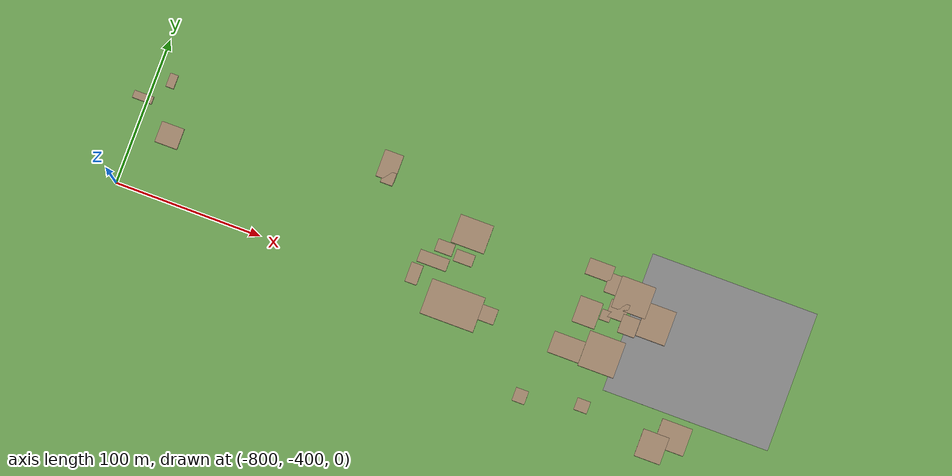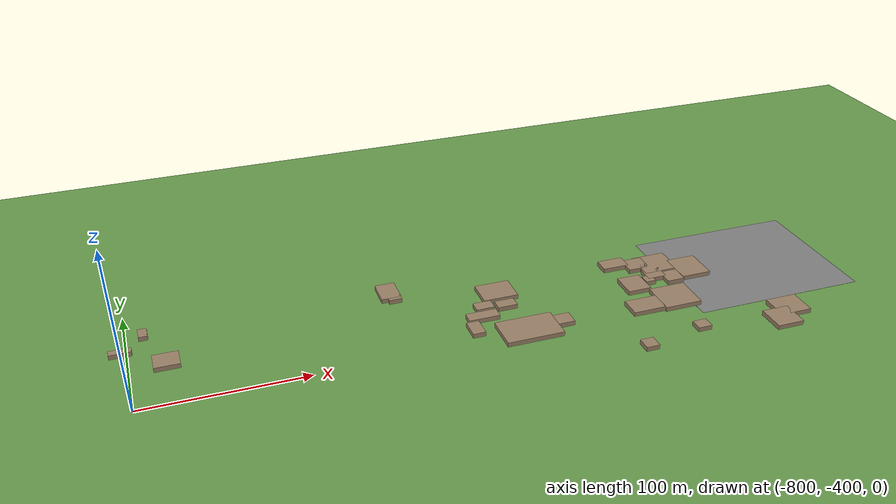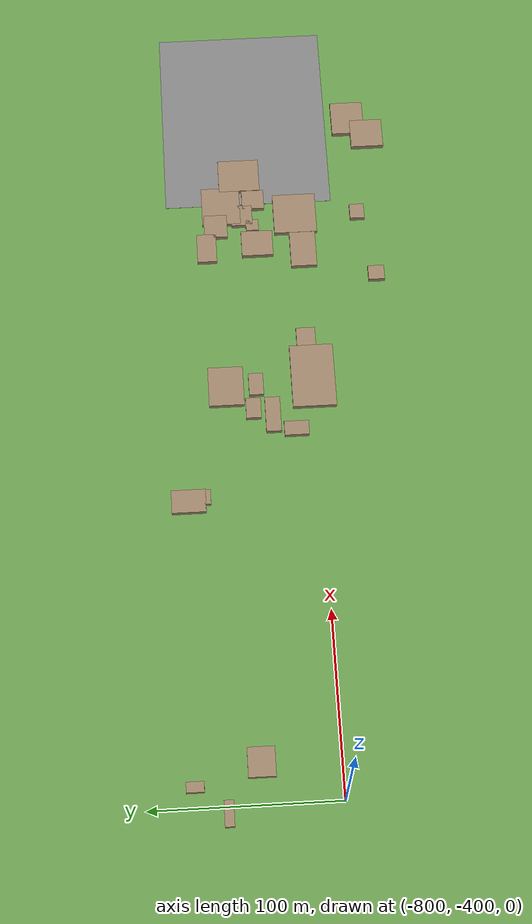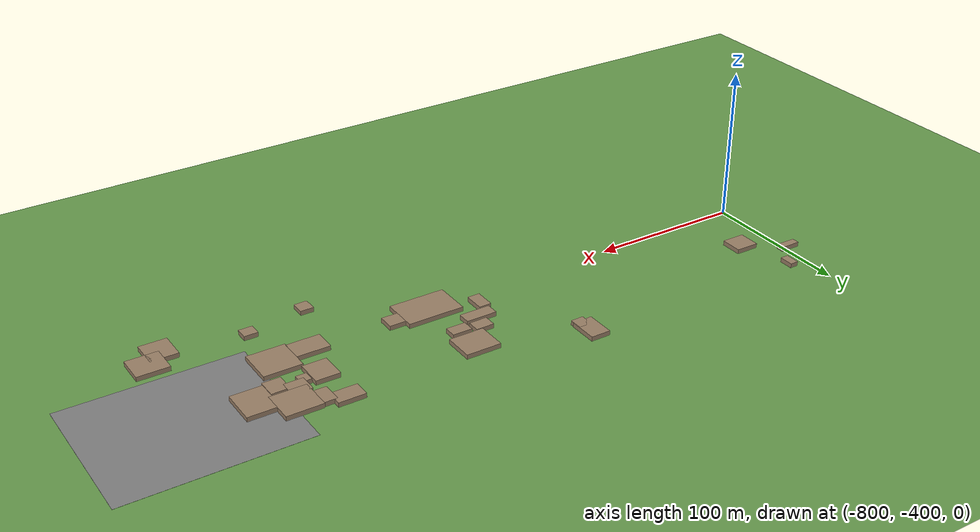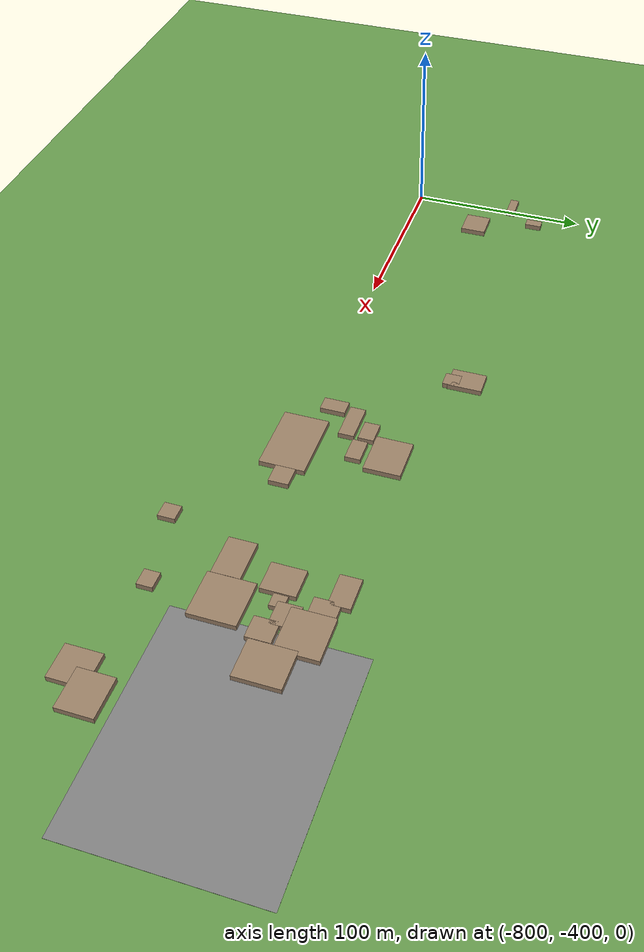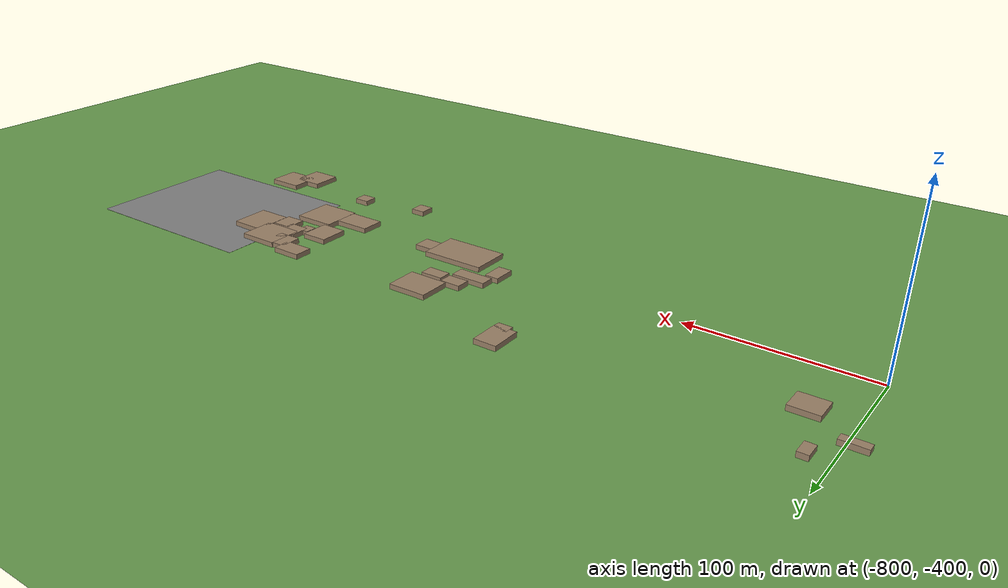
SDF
<sdf version="1.9">
 <world name="kimje_farmland">
  <model name="ground_plane">
   <static>true</static>
   <link name="link">
    <collision name="collision">
     <geometry><plane><normal>0 0 1</normal><size>2000 2000</size></plane></geometry>
    </collision>
    <visual name="visual">
     <geometry><plane><normal>0 0 1</normal><size>2000 2000</size></plane></geometry>
     <material><ambient>0.4 0.6 0.3 1</ambient><diffuse>0.4 0.6 0.3 1</diffuse></material>
    </visual>
   </link>
  </model>
  <model name="osm_3">
   <static>true</static>
   <pose>-398.99 -369.41 0.040 0 0 0</pose>
   <link name="link">
    <collision name="collision"><geometry><box><size>113.94 94.78 0.080</size></box></geometry></collision>
    <visual name="visual">
     <geometry><box><size>113.94 94.78 0.080</size></box></geometry>
     <material><ambient>0.5 0.5 0.5 1</ambient><diffuse>0.5 0.5 0.5 1</diffuse></material>
    </visual>
   </link>
  </model>
  <model name="osm_670">
   <static>true</static>
   <pose>-789.35 -324.95 1.500 0 0 0</pose>
   <link name="link">
    <collision name="collision"><geometry><box><size>5.48 9.30 3.000</size></box></geometry></collision>
    <visual name="visual">
     <geometry><box><size>5.48 9.30 3.000</size></box></geometry>
     <material><ambient>0.6 0.5 0.4 1</ambient><diffuse>0.6 0.5 0.4 1</diffuse></material>
    </visual>
   </link>
  </model>
  <model name="osm_671">
   <static>true</static>
   <pose>-803.39 -341.46 1.500 0 0 0</pose>
   <link name="link">
    <collision name="collision"><geometry><box><size>13.41 4.99 3.000</size></box></geometry></collision>
    <visual name="visual">
     <geometry><box><size>13.41 4.99 3.000</size></box></geometry>
     <material><ambient>0.6 0.5 0.4 1</ambient><diffuse>0.6 0.5 0.4 1</diffuse></material>
    </visual>
   </link>
  </model>
  <model name="osm_692">
   <static>true</static>
   <pose>-484.50 -344.31 1.500 0 0 0</pose>
   <link name="link">
    <collision name="collision"><geometry><box><size>17.40 10.92 3.000</size></box></geometry></collision>
    <visual name="visual">
     <geometry><box><size>17.40 10.92 3.000</size></box></geometry>
     <material><ambient>0.6 0.5 0.4 1</ambient><diffuse>0.6 0.5 0.4 1</diffuse></material>
    </visual>
   </link>
  </model>
  <model name="osm_696">
   <static>true</static>
   <pose>-438.33 -364.62 1.500 0 0 0</pose>
   <link name="link">
    <collision name="collision"><geometry><box><size>20.10 23.24 3.000</size></box></geometry></collision>
    <visual name="visual">
     <geometry><box><size>20.10 23.24 3.000</size></box></geometry>
     <material><ambient>0.6 0.5 0.4 1</ambient><diffuse>0.6 0.5 0.4 1</diffuse></material>
    </visual>
   </link>
  </model>
  <model name="osm_697">
   <static>true</static>
   <pose>-457.89 -353.45 1.500 0 0 0</pose>
   <link name="link">
    <collision name="collision"><geometry><box><size>23.37 21.67 3.000</size></box></geometry></collision>
    <visual name="visual">
     <geometry><box><size>23.37 21.67 3.000</size></box></geometry>
     <material><ambient>0.6 0.5 0.4 1</ambient><diffuse>0.6 0.5 0.4 1</diffuse></material>
    </visual>
   </link>
  </model>
  <model name="osm_698">
   <static>true</static>
   <pose>-470.71 -349.93 1.500 0 0 0</pose>
   <link name="link">
    <collision name="collision"><geometry><box><size>14.04 13.18 3.000</size></box></geometry></collision>
    <visual name="visual">
     <geometry><box><size>14.04 13.18 3.000</size></box></geometry>
     <material><ambient>0.6 0.5 0.4 1</ambient><diffuse>0.6 0.5 0.4 1</diffuse></material>
    </visual>
   </link>
  </model>
  <model name="osm_699">
   <static>true</static>
   <pose>-464.51 -365.08 1.500 0 0 0</pose>
   <link name="link">
    <collision name="collision"><geometry><box><size>12.53 11.92 3.000</size></box></geometry></collision>
    <visual name="visual">
     <geometry><box><size>12.53 11.92 3.000</size></box></geometry>
     <material><ambient>0.6 0.5 0.4 1</ambient><diffuse>0.6 0.5 0.4 1</diffuse></material>
    </visual>
   </link>
  </model>
  <model name="osm_700">
   <static>true</static>
   <pose>-454.44 -371.98 1.500 0 0 0</pose>
   <link name="link">
    <collision name="collision"><geometry><box><size>11.72 12.49 3.000</size></box></geometry></collision>
    <visual name="visual">
     <geometry><box><size>11.72 12.49 3.000</size></box></geometry>
     <material><ambient>0.6 0.5 0.4 1</ambient><diffuse>0.6 0.5 0.4 1</diffuse></material>
    </visual>
   </link>
  </model>
  <model name="osm_701">
   <static>true</static>
   <pose>-464.63 -395.42 1.500 0 0 0</pose>
   <link name="link">
    <collision name="collision"><geometry><box><size>24.57 24.20 3.000</size></box></geometry></collision>
    <visual name="visual">
     <geometry><box><size>24.57 24.20 3.000</size></box></geometry>
     <material><ambient>0.6 0.5 0.4 1</ambient><diffuse>0.6 0.5 0.4 1</diffuse></material>
    </visual>
   </link>
  </model>
  <model name="osm_702">
   <static>true</static>
   <pose>-482.72 -372.98 1.500 0 0 0</pose>
   <link name="link">
    <collision name="collision"><geometry><box><size>15.58 17.70 3.000</size></box></geometry></collision>
    <visual name="visual">
     <geometry><box><size>15.58 17.70 3.000</size></box></geometry>
     <material><ambient>0.6 0.5 0.4 1</ambient><diffuse>0.6 0.5 0.4 1</diffuse></material>
    </visual>
   </link>
  </model>
  <model name="osm_703">
   <static>true</static>
   <pose>-470.85 -370.87 1.500 0 0 0</pose>
   <link name="link">
    <collision name="collision"><geometry><box><size>6.96 7.07 3.000</size></box></geometry></collision>
    <visual name="visual">
     <geometry><box><size>6.96 7.07 3.000</size></box></geometry>
     <material><ambient>0.6 0.5 0.4 1</ambient><diffuse>0.6 0.5 0.4 1</diffuse></material>
    </visual>
   </link>
  </model>
  <model name="osm_704">
   <static>true</static>
   <pose>-487.73 -398.90 1.500 0 0 0</pose>
   <link name="link">
    <collision name="collision"><geometry><box><size>21.55 14.53 3.000</size></box></geometry></collision>
    <visual name="visual">
     <geometry><box><size>21.55 14.53 3.000</size></box></geometry>
     <material><ambient>0.6 0.5 0.4 1</ambient><diffuse>0.6 0.5 0.4 1</diffuse></material>
    </visual>
   </link>
  </model>
  <model name="osm_705">
   <static>true</static>
   <pose>-570.69 -351.03 1.500 0 0 0</pose>
   <link name="link">
    <collision name="collision"><geometry><box><size>22.87 19.33 3.000</size></box></geometry></collision>
    <visual name="visual">
     <geometry><box><size>22.87 19.33 3.000</size></box></geometry>
     <material><ambient>0.6 0.5 0.4 1</ambient><diffuse>0.6 0.5 0.4 1</diffuse></material>
    </visual>
   </link>
  </model>
  <model name="osm_706">
   <static>true</static>
   <pose>-570.17 -367.59 1.500 0 0 0</pose>
   <link name="link">
    <collision name="collision"><geometry><box><size>12.84 7.99 3.000</size></box></geometry></collision>
    <visual name="visual">
     <geometry><box><size>12.84 7.99 3.000</size></box></geometry>
     <material><ambient>0.6 0.5 0.4 1</ambient><diffuse>0.6 0.5 0.4 1</diffuse></material>
    </visual>
   </link>
  </model>
  <model name="osm_707">
   <static>true</static>
   <pose>-584.35 -365.46 1.500 0 0 0</pose>
   <link name="link">
    <collision name="collision"><geometry><box><size>11.81 8.26 3.000</size></box></geometry></collision>
    <visual name="visual">
     <geometry><box><size>11.81 8.26 3.000</size></box></geometry>
     <material><ambient>0.6 0.5 0.4 1</ambient><diffuse>0.6 0.5 0.4 1</diffuse></material>
    </visual>
   </link>
  </model>
  <model name="osm_708">
   <static>true</static>
   <pose>-588.59 -375.96 1.500 0 0 0</pose>
   <link name="link">
    <collision name="collision"><geometry><box><size>20.17 8.26 3.000</size></box></geometry></collision>
    <visual name="visual">
     <geometry><box><size>20.17 8.26 3.000</size></box></geometry>
     <material><ambient>0.6 0.5 0.4 1</ambient><diffuse>0.6 0.5 0.4 1</diffuse></material>
    </visual>
   </link>
  </model>
  <model name="osm_709">
   <static>true</static>
   <pose>-597.33 -388.33 1.500 0 0 0</pose>
   <link name="link">
    <collision name="collision"><geometry><box><size>8.12 13.44 3.000</size></box></geometry></collision>
    <visual name="visual">
     <geometry><box><size>8.12 13.44 3.000</size></box></geometry>
     <material><ambient>0.6 0.5 0.4 1</ambient><diffuse>0.6 0.5 0.4 1</diffuse></material>
    </visual>
   </link>
  </model>
  <model name="osm_710">
   <static>true</static>
   <pose>-566.56 -399.19 1.500 0 0 0</pose>
   <link name="link">
    <collision name="collision"><geometry><box><size>36.81 23.98 3.000</size></box></geometry></collision>
    <visual name="visual">
     <geometry><box><size>36.81 23.98 3.000</size></box></geometry>
     <material><ambient>0.6 0.5 0.4 1</ambient><diffuse>0.6 0.5 0.4 1</diffuse></material>
    </visual>
   </link>
  </model>
  <model name="osm_711">
   <static>true</static>
   <pose>-542.86 -396.83 1.500 0 0 0</pose>
   <link name="link">
    <collision name="collision"><geometry><box><size>10.80 10.51 3.000</size></box></geometry></collision>
    <visual name="visual">
     <geometry><box><size>10.80 10.51 3.000</size></box></geometry>
     <material><ambient>0.6 0.5 0.4 1</ambient><diffuse>0.6 0.5 0.4 1</diffuse></material>
    </visual>
   </link>
  </model>
  <model name="osm_712">
   <static>true</static>
   <pose>-636.69 -327.88 1.500 0 0 0</pose>
   <link name="link">
    <collision name="collision"><geometry><box><size>12.87 18.46 3.000</size></box></geometry></collision>
    <visual name="visual">
     <geometry><box><size>12.87 18.46 3.000</size></box></geometry>
     <material><ambient>0.6 0.5 0.4 1</ambient><diffuse>0.6 0.5 0.4 1</diffuse></material>
    </visual>
   </link>
  </model>
  <model name="osm_713">
   <static>true</static>
   <pose>-634.74 -335.47 1.500 0 0 0</pose>
   <link name="link">
    <collision name="collision"><geometry><box><size>8.30 8.67 3.000</size></box></geometry></collision>
    <visual name="visual">
     <geometry><box><size>8.30 8.67 3.000</size></box></geometry>
     <material><ambient>0.6 0.5 0.4 1</ambient><diffuse>0.6 0.5 0.4 1</diffuse></material>
    </visual>
   </link>
  </model>
  <model name="osm_714">
   <static>true</static>
   <pose>-504.95 -439.17 1.500 0 0 0</pose>
   <link name="link">
    <collision name="collision"><geometry><box><size>8.64 9.04 3.000</size></box></geometry></collision>
    <visual name="visual">
     <geometry><box><size>8.64 9.04 3.000</size></box></geometry>
     <material><ambient>0.6 0.5 0.4 1</ambient><diffuse>0.6 0.5 0.4 1</diffuse></material>
    </visual>
   </link>
  </model>
  <model name="osm_715">
   <static>true</static>
   <pose>-465.04 -431.20 1.500 0 0 0</pose>
   <link name="link">
    <collision name="collision"><geometry><box><size>8.99 8.16 3.000</size></box></geometry></collision>
    <visual name="visual">
     <geometry><box><size>8.99 8.16 3.000</size></box></geometry>
     <material><ambient>0.6 0.5 0.4 1</ambient><diffuse>0.6 0.5 0.4 1</diffuse></material>
    </visual>
   </link>
  </model>
  <model name="osm_717">
   <static>true</static>
   <pose>-402.76 -430.10 1.500 0 0 0</pose>
   <link name="link">
    <collision name="collision"><geometry><box><size>20.76 18.62 3.000</size></box></geometry></collision>
    <visual name="visual">
     <geometry><box><size>20.76 18.62 3.000</size></box></geometry>
     <material><ambient>0.6 0.5 0.4 1</ambient><diffuse>0.6 0.5 0.4 1</diffuse></material>
    </visual>
   </link>
  </model>
  <model name="osm_719">
   <static>true</static>
   <pose>-413.52 -440.58 1.500 0 0 0</pose>
   <link name="link">
    <collision name="collision"><geometry><box><size>17.75 18.56 3.000</size></box></geometry></collision>
    <visual name="visual">
     <geometry><box><size>17.75 18.56 3.000</size></box></geometry>
     <material><ambient>0.6 0.5 0.4 1</ambient><diffuse>0.6 0.5 0.4 1</diffuse></material>
    </visual>
   </link>
  </model>
  <model name="osm_727">
   <static>true</static>
   <pose>-778.38 -358.96 1.500 0 0 0</pose>
   <link name="link">
    <collision name="collision"><geometry><box><size>15.46 14.23 3.000</size></box></geometry></collision>
    <visual name="visual">
     <geometry><box><size>15.46 14.23 3.000</size></box></geometry>
     <material><ambient>0.6 0.5 0.4 1</ambient><diffuse>0.6 0.5 0.4 1</diffuse></material>
    </visual>
   </link>
  </model>
 </world>
</sdf>
